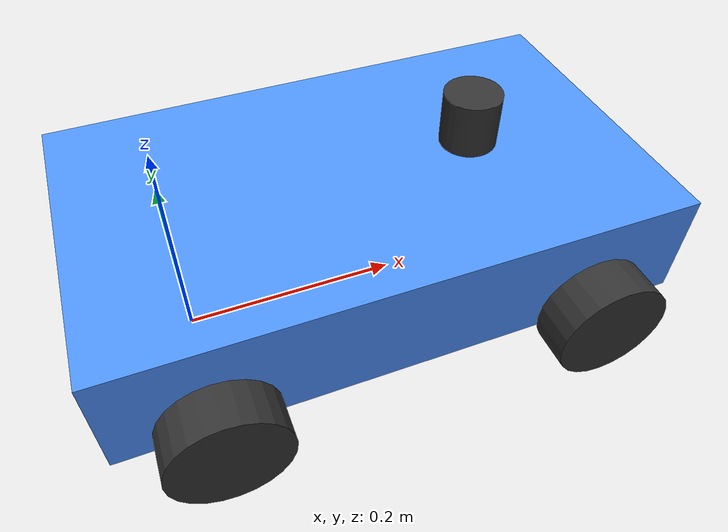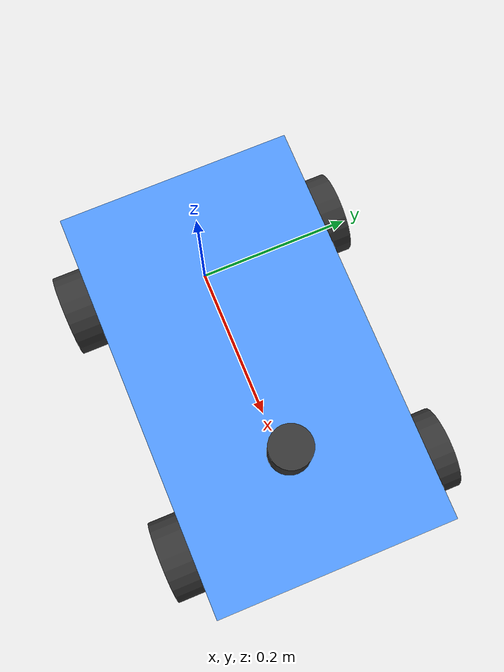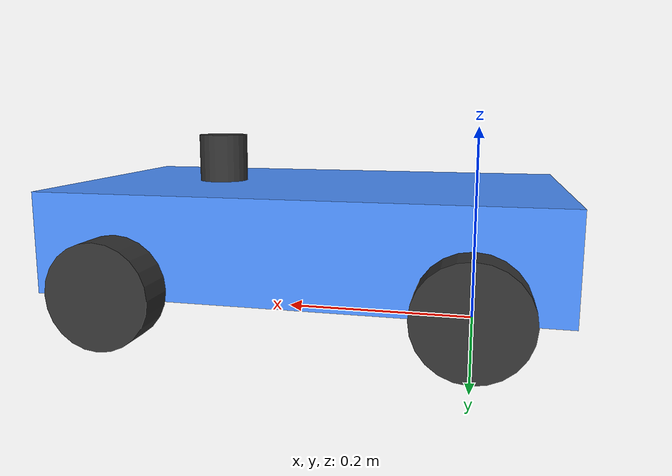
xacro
<?xml version="1.0"?>

<!-- A simple model of the racecar for rviz -->

<robot xmlns:xacro="http://www.ros.org/wiki/xacro" name="racecar">

  <xacro:property name="wheelbase" value="0.3302" />
  <!-- width / body_length match simulator_params collision footprint, not the original 0.2032 / wheelbase stock values -->
  <xacro:property name="width" value="0.29" />
  <xacro:property name="body_length" value="0.5" />
  <xacro:property name="height" value="0.1" />
  <xacro:property name="ground_offset" value="0.04" />
  <xacro:property name="wheel_radius" value="0.0508" />
  <xacro:property name="wheel_length" value="0.0381" />
  <xacro:property name="laser_distance_from_base_link" value="0.275" />
  <xacro:property name="laser_height" value="0.05" />
  <xacro:property name="laser_radius" value="0.026" />
  <xacro:property name="car_name" value="ego_racecar" />

  <material name="black">
    <color rgba="0.2 0.2 0.2 1."/>
  </material>

  <material name="blue">
    <color rgba="0.3 0.57 1. 1."/>
  </material>

  <link name="base_link">
    <visual>
      <origin xyz="${wheelbase/2} 0 ${ground_offset+height/2}"/>
      <geometry>
        <box size="${body_length} ${width} ${height}"/>
      </geometry>
      <material name="blue"/>
    </visual>
  </link>

  <joint name="base_to_laser" type="fixed">
    <parent link="base_link"/>
    <child link="laser"/>
    <origin xyz="${laser_distance_from_base_link} 0 ${ground_offset+height+(laser_height/2)}"/>
  </joint>

  <link name="laser">
    <visual>
      <geometry>
        <cylinder radius="${laser_radius}" length="${laser_height}"/>
      </geometry>
      <material name="black"/>
    </visual>
  </link>

  <joint name="$base_to_back_left_wheel" type="fixed">
    <parent link="base_link"/>
    <child link="back_left_wheel"/>
    <origin xyz="0 ${(wheel_length+width)/2} ${wheel_radius}"/>
  </joint>

  <link name="back_left_wheel">
    <visual>
      <geometry>
        <cylinder radius="${wheel_radius}" length="${wheel_length}"/>
      </geometry>
      <material name="black"/>
      <origin rpy="${pi/2} 0 0"/>
    </visual>
  </link>

  <joint name="base_to_back_right_wheel" type="fixed">
    <parent link="base_link"/>
    <child link="back_right_wheel"/>
    <origin xyz="0 ${-(wheel_length+width)/2} ${wheel_radius}"/>
  </joint>

  <link name="back_right_wheel">
    <visual>
      <geometry>
        <cylinder radius="${wheel_radius}" length="${wheel_length}"/>
      </geometry>
      <material name="black"/>
      <origin rpy="${pi/2} 0 0"/>
    </visual>
  </link>

  <joint name="base_to_front_left_hinge" type="fixed">
    <parent link="base_link"/>
    <child link="front_left_hinge"/>
    <origin xyz="${wheelbase} ${(wheel_length+width)/2} ${wheel_radius}"/>
  </joint>

  <link name="front_left_hinge"/>

  <joint name="front_left_hinge_to_wheel" type="continuous">
    <parent link="front_left_hinge"/>
    <child link="front_left_wheel"/>
  </joint>

  <link name="front_left_wheel">
    <visual>
      <geometry>
        <cylinder radius="${wheel_radius}" length="${wheel_length}"/>
      </geometry>
      <material name="black"/>
      <origin rpy="${pi/2} 0 0"/>
    </visual>
  </link>

  <joint name="base_to_front_right_hinge" type="fixed">
    <parent link="base_link"/>
    <child link="front_right_hinge"/>
    <origin xyz="${wheelbase} ${-(wheel_length+width)/2} ${wheel_radius}"/>
  </joint>

  <link name="front_right_hinge"/>

  <joint name="front_right_hinge_to_wheel" type="continuous">
    <parent link="front_right_hinge"/>
    <child link="front_right_wheel"/>
  </joint>

  <link name="front_right_wheel">
    <visual>
      <geometry>
        <cylinder radius="${wheel_radius}" length="${wheel_length}"/>
      </geometry>
      <material name="black"/>
      <origin rpy="${pi/2} 0 0"/>
    </visual>
  </link>

</robot>
